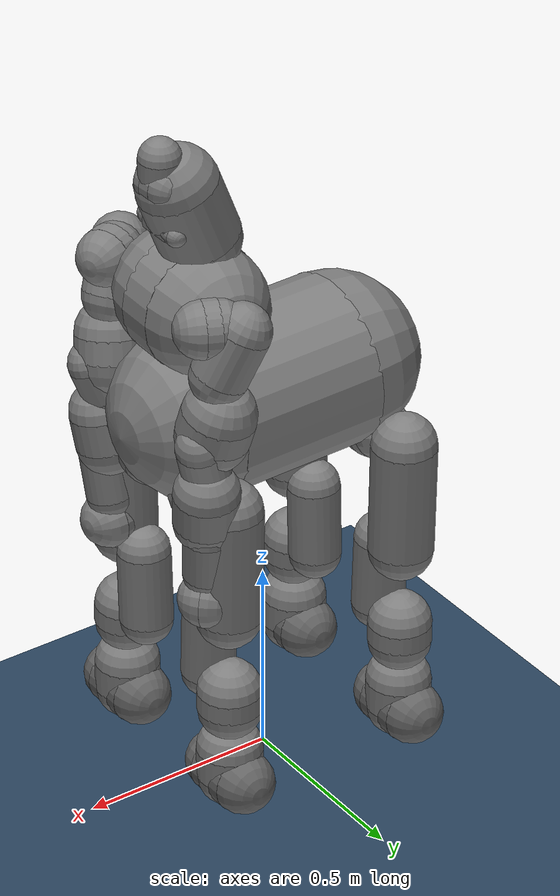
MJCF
<mujoco model="centauro">
    <compiler angle="radian" />
    <asset>
        <texture type="skybox" builtin="gradient" rgb1=".3 .5 .7" rgb2="0 0 0" width="512" height="512"/>
        <texture name="body" type="cube" builtin="flat" mark="cross" width="127" height="1278" rgb1="0.8 0.6 0.4" rgb2="0.8 0.6 0.4" markrgb="1 1 1" random="0.01"/>
        <material name="body" texture="body" texuniform="true" rgba="0.8 0.6 .4 1"/>
        <texture name="grid" type="2d" builtin="checker" width="512" height="512" rgb1=".1 .2 .3" rgb2=".2 .3 .4"/>
        <material name="grid" texture="grid" texrepeat="1 1" texuniform="true" reflectance=".2"/>
    </asset>
    <option timestep="0.0005"/>
    <size njmax="1000" nconmax="200"/>
    <worldbody>
        <geom name="floor" size="0 0 .05" pos="0 0 -0.10" type="plane" material="grid" condim="3"/>
        <light name="spotlight" mode="targetbodycom" target="pelvis" diffuse=".8 .8 .8" specular="0.3 0.3 0.3" pos="0 -20 4" cutoff="10"/>
        <body name="pelvis" pos="0 0 1.0">
            <inertial pos="0.00490056 0.0029738 0.0781582" quat="0.043468 0.71861 0.0206273 0.693747" mass="27.2166" diaginertia="1.12235 1.0509 0.395597" />
            <joint name="reference" type="free" />
            <geom conaffinity="0" size="0.213204 0.192971" pos="-0.005085 2.00284e-07 0.0305795" quat="0.698956 1.30282e-07 0.715165 -1.10029e-12" type="cylinder" />
            <geom conaffinity="0" size="0.213204" pos="-0.198005 0 0.035003" quat="0.698956 1.30282e-07 0.715165 -1.10029e-12" />
            <geom conaffinity="0" size="0.213204" pos="0.187835 0 0.026156" quat="0.698956 1.30282e-07 0.715165 -1.10029e-12" />
            <geom conaffinity="0" size="0.012525 0.045 0.0125" pos="0.278137 0 0.0324153" quat="0.965725 0 0.259569 0" type="box" />
            <geom conaffinity="0" size="0.0142751 0.0511264" pos="0.286046 -0.0005815 0.0630072" quat="0.00361171 0.00532006 -0.706237 -0.707946" type="cylinder" />
            <geom conaffinity="0" size="0.0142751" pos="0.286692 -0.051704 0.062884" quat="0.00361171 0.00532006 -0.706237 -0.707946" />
            <geom conaffinity="0" size="0.0142751" pos="0.2854 0.050541 0.06313" quat="0.00361171 0.00532006 -0.706237 -0.707946" />
            <body name="torso_2" pos="0.2 0 0.256">
                <inertial pos="-0.0189049 0.00457459 0.138217" quat="0.705478 0.707988 0.0227914 -0.0231079" mass="12.8925" diaginertia="0.0642204 0.0480334 0.0272949" />
                <joint name="torso_yaw" pos="0 0 0" axis="0 0 1" limited="true" range="-2.618 2.618" />
                <geom conaffinity="0" size="0.158224 0.0477184" pos="-3.2165e-05 9.785e-05 0.0746528" quat="0.708575 0.705547 -0.0112062 0" type="cylinder" />
                <geom conaffinity="0" size="0.158224" pos="0.000726 0.04781 0.074454" quat="0.708575 0.705547 -0.0112062 0" />
                <geom conaffinity="0" size="0.158224" pos="-0.00079 -0.047614 0.074851" quat="0.708575 0.705547 -0.0112062 0" />
                <geom conaffinity="0" size="0.100414 0.0822705" pos="0.00956185 0.00615924 0.312422" quat="0.982675 0.000102429 0.185339 0" type="cylinder" />
                <geom conaffinity="0" size="0.100414" pos="-0.0204053 0.00617572 0.235803" quat="0.982675 0.000102429 0.185339 0" />
                <geom conaffinity="0" size="0.100414" pos="0.0395297 0.00614272 0.38904" quat="0.982675 0.000102429 0.185339 0" />
                <body name="arm1_1" pos="0.0457475 0.169137 0.116626" quat="0.96225 0.084186 -0.0225576 -0.257834">
                    <inertial pos="-0.00744572 0.034108 0.000109781" quat="0.461563 0.54214 -0.445839 0.542467" mass="1.96287" diaginertia="0.00689332 0.0054198 0.00332613" />
                    <joint name="j_arm1_1" pos="0 0 0" axis="0 1 0" limited="true" range="-3.312 1.615" />
                    <geom conaffinity="0" size="0.0698859 0.0186988" pos="0.0178314 0.0532412 2.3169e-05" quat="0.702119 -0.0833415 0.707165 1.89504e-12" type="cylinder" />
                    <geom conaffinity="0" size="0.0698859" pos="-0.000737 0.051053 0.000286" quat="0.702119 -0.0833415 0.707165 1.89504e-12" />
                    <geom conaffinity="0" size="0.0698859" pos="0.0364 0.05543 -0.00024" quat="0.702119 -0.0833415 0.707165 1.89504e-12" />
                    <body name="arm1_2" pos="-0.09015 0.062 0" quat="0.996195 -0.0871556 0 0">
                        <inertial pos="0.0581423 5.74508e-05 -0.0774777" quat="0.716914 -0.118275 -0.124187 0.675739" mass="1.85958" diaginertia="0.0156794 0.0151279 0.00327857" />
                        <joint name="j_arm1_2" pos="0 0 0" axis="1 0 0" limited="true" range="0.02 3.431" ref="-0.5" />
                        <geom conaffinity="0" size="0.0700645 0.0639963" pos="0.0637382 4.038e-07 -0.0643592" quat="0.213415 2.39454e-05 0.976962 0" type="cylinder" />
                        <geom conaffinity="0" size="0.0700645" pos="0.037052 1e-06 -0.006192" quat="0.213415 2.39454e-05 0.976962 0" />
                        <geom conaffinity="0" size="0.0700645" pos="0.090424 0 -0.122526" quat="0.213415 2.39454e-05 0.976962 0" />
                        <body name="arm1_3" pos="0.09015 0 -0.21815">
                            <inertial pos="0.0146252 0.000817267 -0.0283335" quat="0.603634 -0.131469 -0.12394 0.776518" mass="1.66781" diaginertia="0.00737031 0.00688019 0.0032086" />
                            <joint name="j_arm1_3" pos="0 0 0" axis="0 0 1" limited="true" range="-2.552 2.566" />
                            <geom conaffinity="0" size="0.0896121 0.0304113" pos="0.00730754 -0.00409114 -0.0366288" quat="0.13918 0.483716 0.864088 1.18459e-12" type="cylinder" />
                            <geom conaffinity="0" size="0.0896121" pos="-7e-06 4e-06 -0.007396" quat="0.13918 0.483716 0.864088 1.18459e-12" />
                            <geom conaffinity="0" size="0.0896121" pos="0.014622 -0.008186 -0.065862" quat="0.13918 0.483716 0.864088 1.18459e-12" />
                            <body name="arm1_4" pos="0.045 0.05515 -0.074">
                                <inertial pos="-0.00768331 -0.0403022 -0.0434928" quat="0.983894 -0.157573 0.0796967 0.027782" mass="1.31573" diaginertia="0.0043973 0.0041202 0.00142636" />
                                <joint name="j_arm1_4" pos="0 0 0" axis="0 1 0" limited="true" range="-2.465 0.28" />
                                <geom conaffinity="0" size="0.0600429 0.0435671" pos="-0.0074602 -0.0408499 -0.0404292" quat="0.982114 -0.166547 0.0878262 0" type="cylinder" />
                                <geom conaffinity="0" size="0.0600429" pos="-0.014976 -0.055102 -0.080907" quat="0.982114 -0.166547 0.0878262 0" />
                                <geom conaffinity="0" size="0.0600429" pos="5.6e-05 -0.026598 4.9e-05" quat="0.982114 -0.166547 0.0878262 0" />
                                <body name="arm1_5" pos="-0.015 -0.05515 -0.095">
                                    <inertial pos="-0.000110796 0.0115908 -0.0781603" quat="0.999411 -0.0326811 -0.00141582 0.0103607" mass="1.49085" diaginertia="0.00856963 0.00776657 0.00272262" />
                                    <joint name="j_arm1_5" pos="0 0 0" axis="0 0 1" limited="true" range="-2.569 2.562" />
                                    <geom conaffinity="0" size="0.0804108 0.0421737" pos="-3.79828e-06 0.00576208 -0.082271" quat="0.995248 -0.0973705 5.47455e-05 0" type="cylinder" />
                                    <geom conaffinity="0" size="0.0804108" pos="-8e-06 -0.002412 -0.123645" quat="0.995248 -0.0973705 5.47455e-05 0" />
                                    <geom conaffinity="0" size="0.0804108" pos="1e-06 0.013936 -0.040897" quat="0.995248 -0.0973705 5.47455e-05 0" />
                                    <body name="arm1_6" pos="0 0.049 -0.156">
                                        <inertial pos="-4.65024e-06 -0.0380141 -0.0699269" quat="0.993852 -0.0968797 0.00427602 0.0534179" mass="1.12636" diaginertia="0.00519002 0.00494291 0.00113517" />
                                        <joint name="j_arm1_6" pos="0 0 0" axis="0 1 0" limited="true" range="-1.529 1.509" />
                                        <geom conaffinity="0" size="0.0583263 0.0571257" pos="1.10955e-06 -0.0434554 -0.0574973" quat="0.996962 -0.0778833 -0.000322529 0" type="cylinder" />
                                        <geom conaffinity="0" size="0.0583263" pos="3.8e-05 -0.052327 -0.11393" quat="0.996962 -0.0778833 -0.000322529 0" />
                                        <geom conaffinity="0" size="0.0583263" pos="-3.6e-05 -0.034584 -0.001065" quat="0.996962 -0.0778833 -0.000322529 0" />
                                        <body name="arm1_7" pos="0 -0.049 -0.174">
                                            <inertial pos="9.48576e-06 0.000541461 0.01433" quat="0.536054 0.460309 -0.42533 0.565558" mass="1.92794" diaginertia="0.00341793 0.00316235 0.00311839" />
                                            <joint name="j_arm1_7" pos="0 0 0" axis="0 0 1" limited="true" range="-2.565 2.569" />
                                            <geom conaffinity="0" size="0.0207073 0.00458365" pos="0 0 0.0101335" quat="0.707107 -0.682842 -0.18365 0" type="cylinder" />
                                            <geom conaffinity="0" size="0.0207073" pos="0.00119 -0.004426 0.010133" quat="0.707107 -0.682842 -0.18365 0" />
                                            <geom conaffinity="0" size="0.0207073" pos="-0.00119 0.004426 0.010134" quat="0.707107 -0.682842 -0.18365 0" />
                                            <geom conaffinity="0" size="0.0709883 4.97004e-05" pos="-2.682e-07 1.2015e-06 -0.0105021" quat="0.707818 -0.265302 -0.654682 0" type="cylinder" />
                                            <geom conaffinity="0" size="0.0709883" pos="4.6e-05 -1.7e-05 -0.010502" quat="0.707818 -0.265302 -0.654682 0" />
                                            <geom conaffinity="0" size="0.0709883" pos="-4.6e-05 2e-05 -0.010502" quat="0.707818 -0.265302 -0.654682 0" />
                                        </body>
                                    </body>
                                </body>
                            </body>
                        </body>
                    </body>
                </body>
                <body name="arm2_1" pos="0.0457475 -0.169137 0.116626" quat="0.96225 -0.084186 -0.0225576 0.257834">
                    <inertial pos="-0.00744572 -0.034108 0.000109781" quat="0.54214 0.461563 -0.542467 0.445839" mass="1.96287" diaginertia="0.00689332 0.0054198 0.00332613" />
                    <joint name="j_arm2_1" pos="0 0 0" axis="0 1 0" limited="true" range="-3.3458 1.6012" />
                    <geom conaffinity="0" size="0.0698859 0.0186988" pos="0.0178314 -0.0532412 2.3169e-05" quat="0.702119 0.0833415 0.707165 -1.89504e-12" type="cylinder" />
                    <geom conaffinity="0" size="0.0698859" pos="-0.000737 -0.051053 0.000286" quat="0.702119 0.0833415 0.707165 -1.89504e-12" />
                    <geom conaffinity="0" size="0.0698859" pos="0.0364 -0.05543 -0.00024" quat="0.702119 0.0833415 0.707165 -1.89504e-12" />
                    <body name="arm2_2" pos="-0.09015 -0.062 0" quat="0.996195 0.0871556 0 0">
                        <inertial pos="0.0581423 -5.74508e-05 -0.0774777" quat="0.675739 -0.124187 -0.118275 0.716914" mass="1.85958" diaginertia="0.0156794 0.0151279 0.00327857" />
                        <joint name="j_arm2_2" pos="0 0 0" axis="1 0 0" limited="true" range="-3.4258 -0.0138" ref="0.50" />
                        <geom conaffinity="0" size="0.0700645 0.0639963" pos="0.0637382 -4.038e-07 -0.0643592" quat="0.213415 -2.39454e-05 0.976962 0" type="cylinder" />
                        <geom conaffinity="0" size="0.0700645" pos="0.037052 -1e-06 -0.006192" quat="0.213415 -2.39454e-05 0.976962 0" />
                        <geom conaffinity="0" size="0.0700645" pos="0.090424 0 -0.122526" quat="0.213415 -2.39454e-05 0.976962 0" />
                        <body name="arm2_3" pos="0.09015 0 -0.21815">
                            <inertial pos="0.0146252 -0.000817267 -0.0283335" quat="0.776518 -0.12394 -0.131469 0.603634" mass="1.66781" diaginertia="0.00737031 0.00688019 0.0032086" />
                            <joint name="j_arm2_3" pos="0 0 0" axis="0 0 1" limited="true" range="-2.5614 2.5606" />
                            <geom conaffinity="0" size="0.0896121 0.0304113" pos="0.00730754 0.00409114 -0.0366288" quat="0.13918 -0.483716 0.864088 -1.18459e-12" type="cylinder" />
                            <geom conaffinity="0" size="0.0896121" pos="-7e-06 -4e-06 -0.007396" quat="0.13918 -0.483716 0.864088 -1.18459e-12" />
                            <geom conaffinity="0" size="0.0896121" pos="0.014622 0.008186 -0.065862" quat="0.13918 -0.483716 0.864088 -1.18459e-12" />
                            <body name="arm2_4" pos="0.045 -0.05515 -0.074">
                                <inertial pos="-0.00768331 0.0403022 -0.0434928" quat="0.983894 0.157573 0.0796967 -0.027782" mass="1.31573" diaginertia="0.0043973 0.0041202 0.00142636" />
                                <joint name="j_arm2_4" pos="0 0 0" axis="0 1 0" limited="true" range="-2.4794 0.2886" />
                                <geom conaffinity="0" size="0.0600429 0.0435671" pos="-0.0074602 0.0408499 -0.0404292" quat="0.982114 0.166547 0.0878262 0" type="cylinder" />
                                <geom conaffinity="0" size="0.0600429" pos="-0.014976 0.055102 -0.080907" quat="0.982114 0.166547 0.0878262 0" />
                                <geom conaffinity="0" size="0.0600429" pos="5.6e-05 0.026598 4.9e-05" quat="0.982114 0.166547 0.0878262 0" />
                                <body name="arm2_5" pos="-0.015 0.05515 -0.095">
                                    <inertial pos="-0.000110796 -0.0115908 -0.0781603" quat="0.999411 0.0326811 -0.00141582 -0.0103607" mass="1.49085" diaginertia="0.00856963 0.00776657 0.00272262" />
                                    <joint name="j_arm2_5" pos="0 0 0" axis="0 0 1" limited="true" range="-2.5394 2.5546" />
                                    <geom conaffinity="0" size="0.0804108 0.0421737" pos="-3.79828e-06 -0.00576208 -0.082271" quat="0.995248 0.0973705 5.47455e-05 0" type="cylinder" />
                                    <geom conaffinity="0" size="0.0804108" pos="-8e-06 0.002412 -0.123645" quat="0.995248 0.0973705 5.47455e-05 0" />
                                    <geom conaffinity="0" size="0.0804108" pos="1e-06 -0.013936 -0.040897" quat="0.995248 0.0973705 5.47455e-05 0" />
                                    <body name="arm2_6" pos="0 -0.049 -0.156">
                                        <inertial pos="-4.65024e-06 0.0380141 -0.0699269" quat="0.993852 0.0968797 0.00427602 -0.0534179" mass="1.12636" diaginertia="0.00519002 0.00494291 0.00113517" />
                                        <joint name="j_arm2_6" pos="0 0 0" axis="0 1 0" limited="true" range="-1.5154 1.5156" />
                                        <geom conaffinity="0" size="0.0583263 0.0571257" pos="1.10955e-06 0.0434554 -0.0574973" quat="0.996962 0.0778833 -0.000322529 0" type="cylinder" />
                                        <geom conaffinity="0" size="0.0583263" pos="3.8e-05 0.052327 -0.11393" quat="0.996962 0.0778833 -0.000322529 0" />
                                        <geom conaffinity="0" size="0.0583263" pos="-3.6e-05 0.034584 -0.001065" quat="0.996962 0.0778833 -0.000322529 0" />
                                        <body name="arm2_7" pos="0 0.049 -0.174">
                                            <inertial pos="9.48576e-06 -0.000491936 0.01433" quat="0.457705 0.538036 -0.562311 0.429918" mass="1.92794" diaginertia="0.00341759 0.00316238 0.0031189" />
                                            <joint name="j_arm2_7" pos="0 0 0" axis="0 0 1" limited="true" range="-2.5554 2.5686" />
                                            <geom conaffinity="0" size="0.0207073 0.00458365" pos="0 0 0.0101335" quat="0.707107 0.682842 -0.18365 0" type="cylinder" />
                                            <geom conaffinity="0" size="0.0207073" pos="0.00119 0.004426 0.010133" quat="0.707107 0.682842 -0.18365 0" />
                                            <geom conaffinity="0" size="0.0207073" pos="-0.00119 -0.004426 0.010134" quat="0.707107 0.682842 -0.18365 0" />
                                            <geom conaffinity="0" size="0.0709883 4.97004e-05" pos="-2.682e-07 1.2015e-06 -0.0105021" quat="0.707818 -0.265302 -0.654682 0" type="cylinder" />
                                            <geom conaffinity="0" size="0.0709883" pos="4.6e-05 -1.7e-05 -0.010502" quat="0.707818 -0.265302 -0.654682 0" />
                                            <geom conaffinity="0" size="0.0709883" pos="-4.6e-05 2e-05 -0.010502" quat="0.707818 -0.265302 -0.654682 0" />
                                        </body>
                                    </body>
                                </body>
                            </body>
                        </body>
                    </body>
                </body>
                <body name="velodyne_motor" pos="0.0853361 0.00616072 0.4">
                    <inertial pos="0 0 0.0255623" quat="0.594705 0.741161 0.0512412 -0.307215" mass="1.17879" diaginertia="0.00164255 0.00159806 0.00136504" />
                    <joint name="velodyne_joint" pos="0 0 0" axis="0 -1 0" limited="true" range="-1.1 1.1" frictionloss="10" />
                    <geom conaffinity="0" size="0.0544637 0.0162316" pos="-0.000743872 0.00508305 0.00835998" quat="0.710282 -0.701573 -0.0573979 0" type="cylinder" />
                    <geom conaffinity="0" size="0.0544637" pos="0.00058 -0.011094 0.008214" quat="0.710282 -0.701573 -0.0573979 0" />
                    <geom conaffinity="0" size="0.0544637" pos="-0.002067 0.02126 0.008506" quat="0.710282 -0.701573 -0.0573979 0" />
                    <geom conaffinity="0" size="0.0516 0.03585" pos="0 0 0.03585" type="cylinder" />
                    <geom conaffinity="0" size="0.0516" />
                    <geom conaffinity="0" size="0.0516" pos="0 0 0.0717" />
                </body>
                <body name="d435_head_motor" pos="0.0630637 0.00616072 0.2955">
                    <inertial pos="0.0188357 0.0109328 0" quat="0.492029 0.4631 -0.536475 0.505609" mass="0.902787" diaginertia="0.00464125 0.00432785 0.00086765" />
                    <joint name="d435_head_joint" pos="0 0 0" axis="0 -1 0" limited="true" range="-1.1 1.1" frictionloss="10" />
                    <geom conaffinity="0" size="0.0261699 0.0606721" pos="0.0155365 -0.0046848 0.00250922" quat="0.697856 -0.715488 0.0327707 0" type="cylinder" />
                    <geom conaffinity="0" size="0.0261699" pos="0.012761 -0.065273 0.004086" quat="0.697856 -0.715488 0.0327707 0" />
                    <geom conaffinity="0" size="0.0261699" pos="0.018311 0.055903 0.000932" quat="0.697856 -0.715488 0.0327707 0" />
                    <geom conaffinity="0" size="0.012525 0.045 0.0125" pos="0.03015 0 0" type="box" />
                </body>
            </body>
            <body name="hip1_1" pos="0.25 0.125 -0.0566">
                <inertial pos="0.000359586 0.0333388 -0.0591903" quat="0.712917 0.685529 0.104088 -0.104718" mass="2.33492" diaginertia="0.00685516 0.00668482 0.00262008" />
                <joint name="hip_yaw_1" pos="0 0 0" axis="0 0 -1" limited="true" range="-2.03 2.51" />
                <geom conaffinity="0" size="0.0747223 0.0153477" pos="0.000123454 -0.0119497 -0.0631367" quat="0.802262 -0.596933 0.00689249 0" type="cylinder" />
                <geom conaffinity="0" size="0.0747223" pos="-4.6e-05 -0.02665 -0.067545" quat="0.802262 -0.596933 0.00689249 0" />
                <geom conaffinity="0" size="0.0747223" pos="0.000293 0.00275 -0.058728" quat="0.802262 -0.596933 0.00689249 0" />
                <body name="hip2_1" pos="0 0.1146 -0.0625" quat="0.707107 0.707107 0 0">
                    <inertial pos="-4.6286e-06 -0.221402 0.0331668" quat="0.756514 0.653967 0.00236922 -0.00285355" mass="3.45721" diaginertia="0.0504699 0.0490878 0.00730749" />
                    <joint name="hip_pitch_1" pos="0 0 0" axis="0 0 -1" limited="true" range="-2.0226 2.02748" />
                    <geom conaffinity="0" size="0.0808941 0.14599" pos="1.10697e-06 -0.13974 0.0170087" quat="0.699955 -0.714186 -5.17577e-06 0" type="cylinder" />
                    <geom conaffinity="0" size="0.0808941" pos="2e-06 -0.285701 0.019947" quat="0.699955 -0.714186 -5.17577e-06 0" />
                    <geom conaffinity="0" size="0.0808941" pos="0 0.00622 0.014071" quat="0.699955 -0.714186 -5.17577e-06 0" />
                    <body name="knee_1" pos="0 -0.3 0.1182" quat="0 1 0 0">
                        <inertial pos="0.000120634 0.146207 0.0297407" quat="0.630451 0.765124 0.101469 -0.0825892" mass="2.11993" diaginertia="0.0184356 0.0182996 0.00425349" />
                        <joint name="knee_pitch_1" pos="0 0 0" axis="0 0 -1" limited="true" range="-2.4056 2.3994" />
                        <geom conaffinity="0" size="0.0664305 0.0963751" pos="-4.07652e-06 0.0958646 0.0143745" quat="0.69343 -0.720524 -2.92114e-05 0" type="cylinder" />
                        <geom conaffinity="0" size="0.0664305" pos="0 -0.00044 0.018066" quat="0.69343 -0.720524 -2.92114e-05 0" />
                        <geom conaffinity="0" size="0.0664305" pos="-8e-06 0.192169 0.010683" quat="0.69343 -0.720524 -2.92114e-05 0" />
                        <body name="ankle1_1" pos="0 0.2 0.10015" quat="0 1 0 0">
                            <inertial pos="0.000123601 -0.0627471 -0.00490685" quat="0.746546 0.647602 -0.0996407 0.115551" mass="1.40234" diaginertia="0.00499928 0.00492895 0.00169743" />
                            <joint name="ankle_pitch_1" pos="0 0 0" axis="0 0 -1" limited="true" range="-2.4056 2.3184" />
                            <geom conaffinity="0" size="0.0792379 0.0246282" pos="-3.39946e-05 -0.0238356 -1.2084e-05" quat="0.705951 0.70826 0.000349485 0" type="cylinder" />
                            <geom conaffinity="0" size="0.0792379" pos="-4.6e-05 0.000792 6.8e-05" quat="0.705951 0.70826 0.000349485 0" />
                            <geom conaffinity="0" size="0.0792379" pos="-2.2e-05 -0.048464 -9.3e-05" quat="0.705951 0.70826 0.000349485 0" />
                            <body name="ankle2_1" pos="0 -0.139 -0.00085" quat="0.707107 -0.707107 0 0">
                                <inertial pos="0.00184967 -0.000513224 -0.0673092" quat="0.999198 0.0156728 0.0368308 -0.00100998" mass="1.76567" diaginertia="0.00741457 0.00544457 0.00428742" />
                                <joint name="ankle_yaw_1" pos="0 0 0" axis="0 0 -1" limited="true" range="-2.5626 2.5384" />
                                <geom conaffinity="0" size="0.0813545 0.0368513" pos="-1.17781e-05 -0.00182701 -0.0652808" quat="0.00125264 0.995362 0.0961939 0" type="cylinder" />
                                <geom conaffinity="0" size="0.0813545" pos="-2.1e-05 -0.001735 -0.02843" quat="0.00125264 0.995362 0.0961939 0" />
                                <geom conaffinity="0" size="0.0813545" pos="-3e-06 -0.001919 -0.102132" quat="0.00125264 0.995362 0.0961939 0" />
                                <body name="wheel_1" pos="0 0 -0.09835" quat="0.707107 0.707107 0 0">
                                    <inertial pos="0 0 -0.00311559" quat="0 0.707107 0 0.707107" mass="1.11164" diaginertia="0.00418172 0.00281756 0.00281741" />
                                    <joint name="j_wheel_1" pos="0 0 0" axis="0 0 -1" />
                                    <geom conaffinity="0" size="0.078 0.055" type="cylinder" rgba="0.4 0.4 0.4 1" />
                                    <geom conaffinity="0" size="0.078" pos="0 0 -0.055" rgba="0.4 0.4 0.4 1" />
                                    <geom conaffinity="0" size="0.078" pos="0 0 0.055" rgba="0.4 0.4 0.4 1" />
                                </body>
                            </body>
                        </body>
                    </body>
                </body>
            </body>
            <body name="hip1_2" pos="0.25 -0.125 -0.0566">
                <inertial pos="0.000359586 -0.0333388 -0.0591903" quat="0.685529 0.712917 0.104718 -0.104088" mass="2.33492" diaginertia="0.00685516 0.00668482 0.00262008" />
                <joint name="hip_yaw_2" pos="0 0 0" axis="0 0 -1" limited="true" range="-2.51 2.03" />
                <geom conaffinity="0" size="0.0747223 0.0153477" pos="0.000123454 0.0119497 -0.0631367" quat="0.802262 0.596933 0.00689249 0" type="cylinder" />
                <geom conaffinity="0" size="0.0747223" pos="-4.6e-05 0.02665 -0.067545" quat="0.802262 0.596933 0.00689249 0" />
                <geom conaffinity="0" size="0.0747223" pos="0.000293 -0.00275 -0.058728" quat="0.802262 0.596933 0.00689249 0" />
                <body name="hip2_2" pos="0 -0.1146 -0.0625" quat="0.707107 0.707107 0 0">
                    <inertial pos="-4.6286e-06 -0.221402 -0.0331668" quat="0.653967 0.756514 -0.00285355 0.00236922" mass="3.45721" diaginertia="0.0504699 0.0490878 0.00730749" />
                    <joint name="hip_pitch_2" pos="0 0 0" axis="0 0 1" limited="true" range="-2.0156 2.0354" />
                    <geom conaffinity="0" size="0.0808941 0.14599" pos="1.10697e-06 -0.13974 -0.0170087" quat="0.714186 -0.699955 -5.07264e-06 0" type="cylinder" />
                    <geom conaffinity="0" size="0.0808941" pos="2e-06 -0.285701 -0.019947" quat="0.714186 -0.699955 -5.07264e-06 0" />
                    <geom conaffinity="0" size="0.0808941" pos="0 0.00622 -0.014071" quat="0.714186 -0.699955 -5.07264e-06 0" />
                    <body name="knee_2" pos="0 -0.3 -0.1182" quat="0 1 0 0">
                        <inertial pos="0.000120634 0.146207 -0.0297407" quat="0.765124 0.630451 -0.0825892 0.101469" mass="2.11993" diaginertia="0.0184356 0.0182996 0.00425349" />
                        <joint name="knee_pitch_2" pos="0 0 0" axis="0 0 1" limited="true" range="-2.4006 2.4034" />
                        <geom conaffinity="0" size="0.0664305 0.0963751" pos="-4.07652e-06 0.0958646 -0.0143745" quat="0.720524 -0.69343 -2.8113e-05 0" type="cylinder" />
                        <geom conaffinity="0" size="0.0664305" pos="0 -0.00044 -0.018066" quat="0.720524 -0.69343 -2.8113e-05 0" />
                        <geom conaffinity="0" size="0.0664305" pos="-8e-06 0.192169 -0.010683" quat="0.720524 -0.69343 -2.8113e-05 0" />
                        <body name="ankle1_2" pos="0 0.2 -0.10015" quat="0 1 0 0">
                            <inertial pos="0.000123601 -0.0627471 0.00490685" quat="0.647602 0.746546 0.115551 -0.0996407" mass="1.40234" diaginertia="0.00499928 0.00492895 0.00169743" />
                            <joint name="ankle_pitch_2" pos="0 0 0" axis="0 0 1" limited="true" range="-2.3266 2.3914" />
                            <geom conaffinity="0" size="0.0781037 0.023942" pos="2.26075e-07 -0.0207647 0.000108892" quat="0.699852 -0.714288 0.000212448 0" type="cylinder" />
                            <geom conaffinity="0" size="0.0781037" pos="-7e-06 -0.044702 0.000598" quat="0.699852 -0.714288 0.000212448 0" />
                            <geom conaffinity="0" size="0.0781037" pos="7e-06 0.003172 -0.00038" quat="0.699852 -0.714288 0.000212448 0" />
                            <body name="ankle2_2" pos="0 -0.139 0.00085" quat="0.707107 -0.707107 0 0">
                                <inertial pos="0.00184967 0.000513224 -0.0673092" quat="0.999198 -0.0156728 0.0368308 0.00100998" mass="1.76567" diaginertia="0.00741457 0.00544457 0.00428742" />
                                <joint name="ankle_yaw_2" pos="0 0 0" axis="0 0 -1" limited="true" range="-2.5546 2.5484" />
                                <geom conaffinity="0" size="0.0813545 0.0368513" pos="-1.17781e-05 0.00182701 -0.0652808" quat="0.00125264 -0.995362 0.0961939 0" type="cylinder" />
                                <geom conaffinity="0" size="0.0813545" pos="-2.1e-05 0.001735 -0.02843" quat="0.00125264 -0.995362 0.0961939 0" />
                                <geom conaffinity="0" size="0.0813545" pos="-3e-06 0.001919 -0.102132" quat="0.00125264 -0.995362 0.0961939 0" />
                                <body name="wheel_2" pos="0 0 -0.09835" quat="0.707107 0.707107 0 0">
                                    <inertial pos="0 0 0.00311559" quat="0 0.707107 0 0.707107" mass="1.11164" diaginertia="0.00418172 0.00281756 0.00281741" />
                                    <joint name="j_wheel_2" pos="0 0 0" axis="0 0 1" />
                                    <geom conaffinity="0" size="0.078 0.055" type="cylinder" rgba="0.4 0.4 0.4 1" />
                                    <geom conaffinity="0" size="0.078" pos="0 0 -0.055" rgba="0.4 0.4 0.4 1" />
                                    <geom conaffinity="0" size="0.078" pos="0 0 0.055" rgba="0.4 0.4 0.4 1" />
                                </body>
                            </body>
                        </body>
                    </body>
                </body>
            </body>
            <body name="hip1_3" pos="-0.25 0.125 -0.0566">
                <inertial pos="0.000359586 0.0333388 -0.0591903" quat="0.712917 0.685529 0.104088 -0.104718" mass="2.33492" diaginertia="0.00685516 0.00668482 0.00262008" />
                <joint name="hip_yaw_3" pos="0 0 0" axis="0 0 -1" limited="true" range="-2.51 2.03" />
                <geom conaffinity="0" size="0.0747223 0.0153477" pos="0.000123454 -0.0119497 -0.0631367" quat="0.802262 -0.596933 0.00689249 0" type="cylinder" />
                <geom conaffinity="0" size="0.0747223" pos="-4.6e-05 -0.02665 -0.067545" quat="0.802262 -0.596933 0.00689249 0" />
                <geom conaffinity="0" size="0.0747223" pos="0.000293 0.00275 -0.058728" quat="0.802262 -0.596933 0.00689249 0" />
                <body name="hip2_3" pos="0 0.1146 -0.0625" quat="0.707107 0.707107 0 0">
                    <inertial pos="-4.6286e-06 -0.221402 0.0331668" quat="0.756514 0.653967 0.00236922 -0.00285355" mass="3.45721" diaginertia="0.0504699 0.0490878 0.00730749" />
                    <joint name="hip_pitch_3" pos="0 0 0" axis="0 0 -1" limited="true" range="-2.0126 2.0384" />
                    <geom conaffinity="0" size="0.0808941 0.14599" pos="1.10697e-06 -0.13974 0.0170087" quat="0.699955 -0.714186 -5.17577e-06 0" type="cylinder" />
                    <geom conaffinity="0" size="0.0808941" pos="2e-06 -0.285701 0.019947" quat="0.699955 -0.714186 -5.17577e-06 0" />
                    <geom conaffinity="0" size="0.0808941" pos="0 0.00622 0.014071" quat="0.699955 -0.714186 -5.17577e-06 0" />
                    <body name="knee_3" pos="0 -0.3 0.1182" quat="0 1 0 0">
                        <inertial pos="0.000120634 0.146207 0.0297407" quat="0.630451 0.765124 0.101469 -0.0825892" mass="2.11993" diaginertia="0.0184356 0.0182996 0.00425349" />
                        <joint name="knee_pitch_3" pos="0 0 0" axis="0 0 -1" limited="true" range="-2.4056 2.4064" />
                        <geom conaffinity="0" size="0.0664305 0.0963751" pos="-4.07652e-06 0.0958646 0.0143745" quat="0.69343 -0.720524 -2.92114e-05 0" type="cylinder" />
                        <geom conaffinity="0" size="0.0664305" pos="0 -0.00044 0.018066" quat="0.69343 -0.720524 -2.92114e-05 0" />
                        <geom conaffinity="0" size="0.0664305" pos="-8e-06 0.192169 0.010683" quat="0.69343 -0.720524 -2.92114e-05 0" />
                        <body name="ankle1_3" pos="0 0.2 0.10015" quat="0 1 0 0">
                            <inertial pos="0.000123601 -0.0627471 -0.00490685" quat="0.746546 0.647602 -0.0996407 0.115551" mass="1.40234" diaginertia="0.00499928 0.00492895 0.00169743" />
                            <joint name="ankle_pitch_3" pos="0 0 0" axis="0 0 -1" limited="true" range="-2.4696 2.4464" />
                            <geom conaffinity="0" size="0.0792379 0.0246282" pos="-3.39946e-05 -0.0238356 -1.2084e-05" quat="0.705951 0.70826 0.000349485 0" type="cylinder" />
                            <geom conaffinity="0" size="0.0792379" pos="-4.6e-05 0.000792 6.8e-05" quat="0.705951 0.70826 0.000349485 0" />
                            <geom conaffinity="0" size="0.0792379" pos="-2.2e-05 -0.048464 -9.3e-05" quat="0.705951 0.70826 0.000349485 0" />
                            <body name="ankle2_3" pos="0 -0.139 -0.00085" quat="0.707107 -0.707107 0 0">
                                <inertial pos="0.00184967 -0.000513224 -0.0673092" quat="0.999198 0.0156728 0.0368308 -0.00100998" mass="1.76567" diaginertia="0.00741457 0.00544457 0.00428742" />
                                <joint name="ankle_yaw_3" pos="0 0 0" axis="0 0 -1" limited="true" range="-2.5606 2.5454" />
                                <geom conaffinity="0" size="0.0813545 0.0368513" pos="-1.17781e-05 -0.00182701 -0.0652808" quat="0.00125264 0.995362 0.0961939 0" type="cylinder" />
                                <geom conaffinity="0" size="0.0813545" pos="-2.1e-05 -0.001735 -0.02843" quat="0.00125264 0.995362 0.0961939 0" />
                                <geom conaffinity="0" size="0.0813545" pos="-3e-06 -0.001919 -0.102132" quat="0.00125264 0.995362 0.0961939 0" />
                                <body name="wheel_3" pos="0 0 -0.09835" quat="0.707107 0.707107 0 0">
                                    <inertial pos="0 0 -0.00311559" quat="0 0.707107 0 0.707107" mass="1.11164" diaginertia="0.00418172 0.00281756 0.00281741" />
                                    <joint name="j_wheel_3" pos="0 0 0" axis="0 0 -1" />
                                    <geom conaffinity="0" size="0.078 0.055" type="cylinder" rgba="0.4 0.4 0.4 1" />
                                    <geom conaffinity="0" size="0.078" pos="0 0 -0.055" rgba="0.4 0.4 0.4 1" />
                                    <geom conaffinity="0" size="0.078" pos="0 0 0.055" rgba="0.4 0.4 0.4 1" />
                                </body>
                            </body>
                        </body>
                    </body>
                </body>
            </body>
            <body name="hip1_4" pos="-0.25 -0.125 -0.0566">
                <inertial pos="0.000359586 -0.0333388 -0.0591903" quat="0.685529 0.712917 0.104718 -0.104088" mass="2.33492" diaginertia="0.00685516 0.00668482 0.00262008" />
                <joint name="hip_yaw_4" pos="0 0 0" axis="0 0 -1" limited="true" range="-2.03 2.51" />
                <geom conaffinity="0" size="0.0747223 0.0153477" pos="0.000123454 0.0119497 -0.0631367" quat="0.802262 0.596933 0.00689249 0" type="cylinder" />
                <geom conaffinity="0" size="0.0747223" pos="-4.6e-05 0.02665 -0.067545" quat="0.802262 0.596933 0.00689249 0" />
                <geom conaffinity="0" size="0.0747223" pos="0.000293 -0.00275 -0.058728" quat="0.802262 0.596933 0.00689249 0" />
                <body name="hip2_4" pos="0 -0.1146 -0.0625" quat="0.707107 0.707107 0 0">
                    <inertial pos="-4.6286e-06 -0.221402 -0.0331668" quat="0.653967 0.756514 -0.00285355 0.00236922" mass="3.45721" diaginertia="0.0504699 0.0490878 0.00730749" />
                    <joint name="hip_pitch_4" pos="0 0 0" axis="0 0 1" limited="true" range="-2.0326 2.0524" />
                    <geom conaffinity="0" size="0.0808941 0.14599" pos="1.10697e-06 -0.13974 -0.0170087" quat="0.714186 -0.699955 -5.07264e-06 0" type="cylinder" />
                    <geom conaffinity="0" size="0.0808941" pos="2e-06 -0.285701 -0.019947" quat="0.714186 -0.699955 -5.07264e-06 0" />
                    <geom conaffinity="0" size="0.0808941" pos="0 0.00622 -0.014071" quat="0.714186 -0.699955 -5.07264e-06 0" />
                    <body name="knee_4" pos="0 -0.3 -0.1182" quat="0 1 0 0">
                        <inertial pos="0.000120634 0.146207 -0.0297407" quat="0.765124 0.630451 -0.0825892 0.101469" mass="2.11993" diaginertia="0.0184356 0.0182996 0.00425349" />
                        <joint name="knee_pitch_4" pos="0 0 0" axis="0 0 1" limited="true" range="-2.4176 2.3884" />
                        <geom conaffinity="0" size="0.0664305 0.0963751" pos="-4.07652e-06 0.0958646 -0.0143745" quat="0.720524 -0.69343 -2.8113e-05 0" type="cylinder" />
                        <geom conaffinity="0" size="0.0664305" pos="0 -0.00044 -0.018066" quat="0.720524 -0.69343 -2.8113e-05 0" />
                        <geom conaffinity="0" size="0.0664305" pos="-8e-06 0.192169 -0.010683" quat="0.720524 -0.69343 -2.8113e-05 0" />
                        <body name="ankle1_4" pos="0 0.2 -0.10015" quat="0 1 0 0">
                            <inertial pos="0.000123601 -0.0627471 0.00490685" quat="0.647602 0.746546 0.115551 -0.0996407" mass="1.40234" diaginertia="0.00499928 0.00492895 0.00169743" />
                            <joint name="ankle_pitch_4" pos="0 0 0" axis="0 0 1" limited="true" range="-2.3426 2.3934" />
                            <geom conaffinity="0" size="0.0781037 0.023942" pos="2.26075e-07 -0.0207647 0.000108892" quat="0.699852 -0.714288 0.000212448 0" type="cylinder" />
                            <geom conaffinity="0" size="0.0781037" pos="-7e-06 -0.044702 0.000598" quat="0.699852 -0.714288 0.000212448 0" />
                            <geom conaffinity="0" size="0.0781037" pos="7e-06 0.003172 -0.00038" quat="0.699852 -0.714288 0.000212448 0" />
                            <body name="ankle2_4" pos="0 -0.139 0.00085" quat="0.707107 -0.707107 0 0">
                                <inertial pos="0.00184967 0.000513224 -0.0673092" quat="0.999198 -0.0156728 0.0368308 0.00100998" mass="1.76567" diaginertia="0.00741457 0.00544457 0.00428742" />
                                <joint name="ankle_yaw_4" pos="0 0 0" axis="0 0 -1" limited="true" range="-2.6046 2.5514" />
                                <geom conaffinity="0" size="0.0813545 0.0368513" pos="-1.17781e-05 0.00182701 -0.0652808" quat="0.00125264 -0.995362 0.0961939 0" type="cylinder" />
                                <geom conaffinity="0" size="0.0813545" pos="-2.1e-05 0.001735 -0.02843" quat="0.00125264 -0.995362 0.0961939 0" />
                                <geom conaffinity="0" size="0.0813545" pos="-3e-06 0.001919 -0.102132" quat="0.00125264 -0.995362 0.0961939 0" />
                                <body name="wheel_4" pos="0 0 -0.09835" quat="0.707107 0.707107 0 0">
                                    <inertial pos="0 0 0.00311559" quat="0 0.707107 0 0.707107" mass="1.11164" diaginertia="0.00418172 0.00281756 0.00281741" />
                                    <joint name="j_wheel_4" pos="0 0 0" axis="0 0 1" />
                                    <geom conaffinity="0" size="0.078 0.055" type="cylinder" rgba="0.4 0.4 0.4 1" />
                                    <geom conaffinity="0" size="0.078" pos="0 0 -0.055" rgba="0.4 0.4 0.4 1" />
                                    <geom conaffinity="0" size="0.078" pos="0 0 0.055" rgba="0.4 0.4 0.4 1" />
                                </body>
                            </body>
                        </body>
                    </body>
                </body>
            </body>
        </body>
    </worldbody>
</mujoco>
